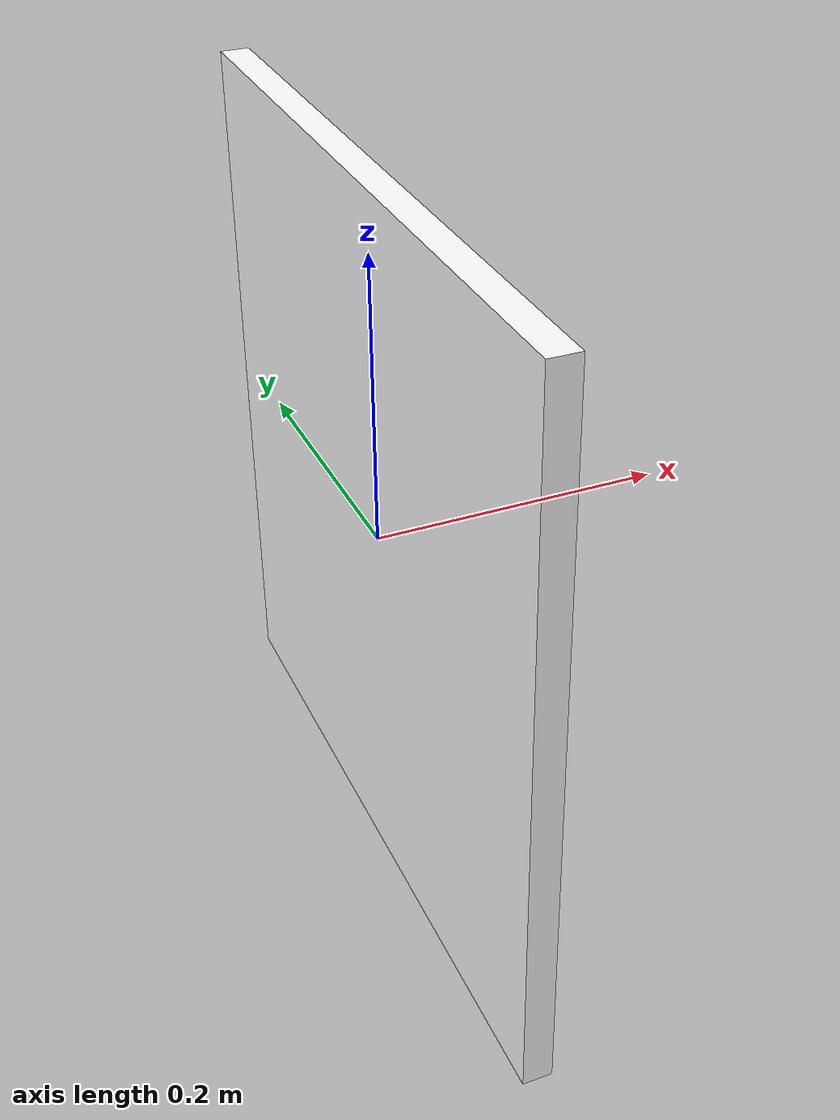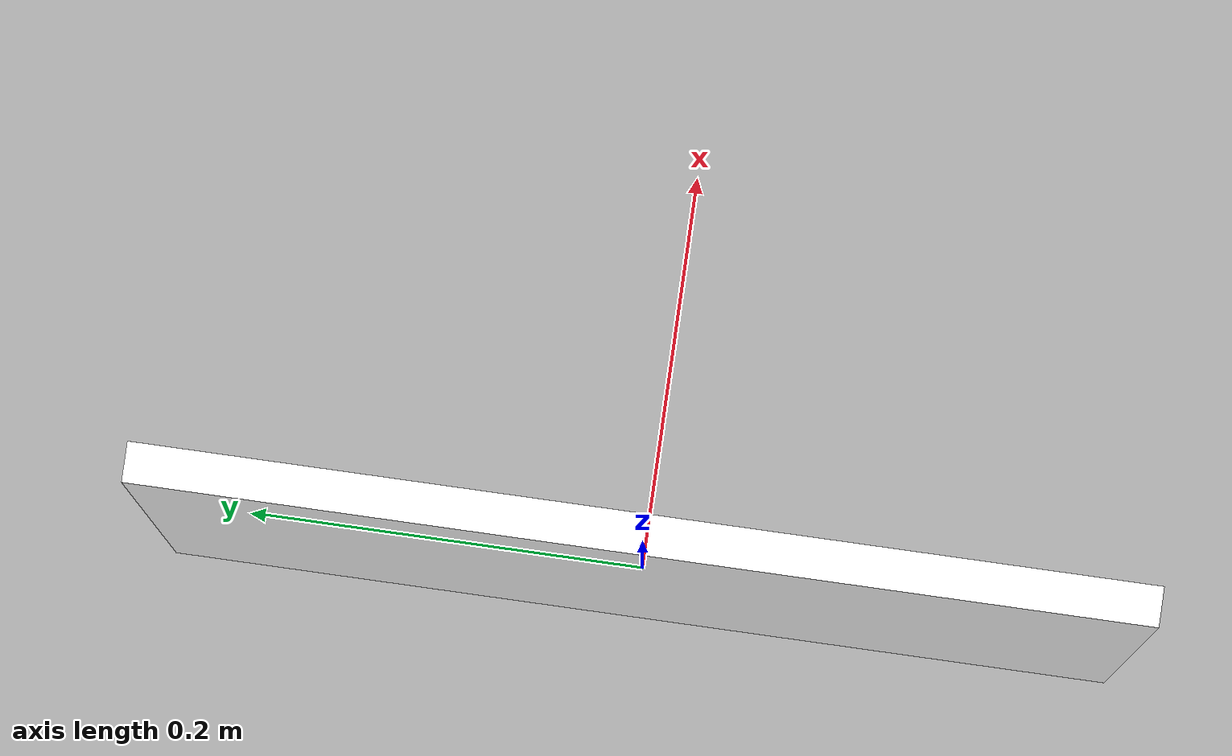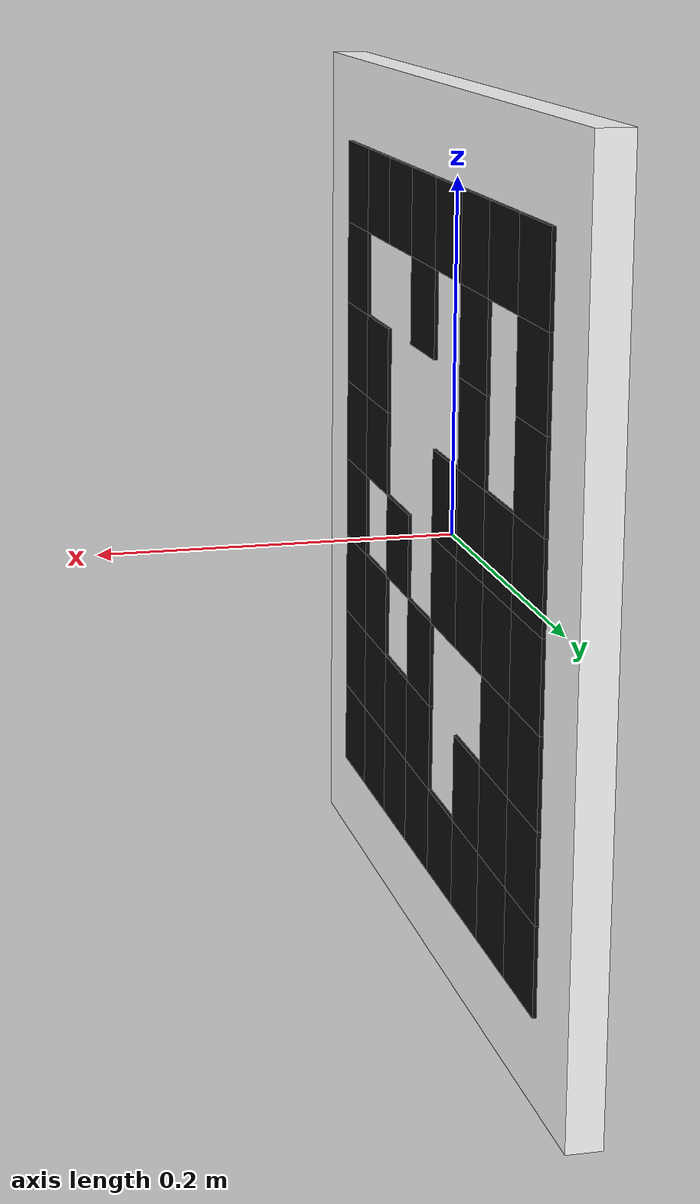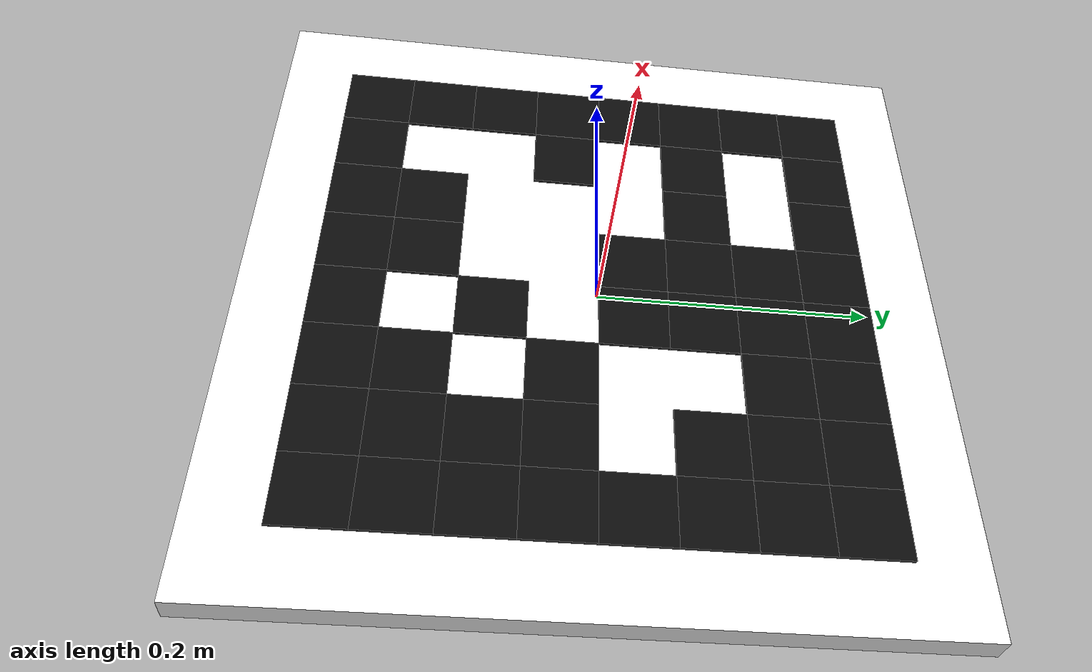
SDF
<?xml version="1.0"?>
<sdf version="1.9">
  <model name="tag36h11_0">
    <static>true</static>
    <link name="tag">
      <collision name="board">
        <pose>0.000000000 0.000000000 0.000000000 0 0 0</pose>
        <geometry><box><size>0.020000000 0.500000000 0.500000000</size></box></geometry>
        <material><ambient>1.000 1.000 1.000 1.000</ambient><diffuse>1.000 1.000 1.000 1.000</diffuse></material>
      </collision>
      <visual name="backing">
        <pose>0.000000000 0.000000000 0.000000000 0 0 0</pose>
        <geometry><box><size>0.020000000 0.500000000 0.500000000</size></box></geometry>
        <material><ambient>1.000 1.000 1.000 1.000</ambient><diffuse>1.000 1.000 1.000 1.000</diffuse></material>
      </visual>
      <visual name="ink_0">
        <pose>0.011000000 -0.175000000 0.175000000 0 0 0</pose>
        <geometry><box><size>0.002000000 0.050000000 0.050000000</size></box></geometry>
        <material><ambient>0.050 0.050 0.050 1.000</ambient><diffuse>0.050 0.050 0.050 1.000</diffuse></material>
      </visual>
      <visual name="ink_1">
        <pose>0.011000000 -0.125000000 0.175000000 0 0 0</pose>
        <geometry><box><size>0.002000000 0.050000000 0.050000000</size></box></geometry>
        <material><ambient>0.050 0.050 0.050 1.000</ambient><diffuse>0.050 0.050 0.050 1.000</diffuse></material>
      </visual>
      <visual name="ink_2">
        <pose>0.011000000 -0.075000000 0.175000000 0 0 0</pose>
        <geometry><box><size>0.002000000 0.050000000 0.050000000</size></box></geometry>
        <material><ambient>0.050 0.050 0.050 1.000</ambient><diffuse>0.050 0.050 0.050 1.000</diffuse></material>
      </visual>
      <visual name="ink_3">
        <pose>0.011000000 -0.025000000 0.175000000 0 0 0</pose>
        <geometry><box><size>0.002000000 0.050000000 0.050000000</size></box></geometry>
        <material><ambient>0.050 0.050 0.050 1.000</ambient><diffuse>0.050 0.050 0.050 1.000</diffuse></material>
      </visual>
      <visual name="ink_4">
        <pose>0.011000000 0.025000000 0.175000000 0 0 0</pose>
        <geometry><box><size>0.002000000 0.050000000 0.050000000</size></box></geometry>
        <material><ambient>0.050 0.050 0.050 1.000</ambient><diffuse>0.050 0.050 0.050 1.000</diffuse></material>
      </visual>
      <visual name="ink_5">
        <pose>0.011000000 0.075000000 0.175000000 0 0 0</pose>
        <geometry><box><size>0.002000000 0.050000000 0.050000000</size></box></geometry>
        <material><ambient>0.050 0.050 0.050 1.000</ambient><diffuse>0.050 0.050 0.050 1.000</diffuse></material>
      </visual>
      <visual name="ink_6">
        <pose>0.011000000 0.125000000 0.175000000 0 0 0</pose>
        <geometry><box><size>0.002000000 0.050000000 0.050000000</size></box></geometry>
        <material><ambient>0.050 0.050 0.050 1.000</ambient><diffuse>0.050 0.050 0.050 1.000</diffuse></material>
      </visual>
      <visual name="ink_7">
        <pose>0.011000000 0.175000000 0.175000000 0 0 0</pose>
        <geometry><box><size>0.002000000 0.050000000 0.050000000</size></box></geometry>
        <material><ambient>0.050 0.050 0.050 1.000</ambient><diffuse>0.050 0.050 0.050 1.000</diffuse></material>
      </visual>
      <visual name="ink_8">
        <pose>0.011000000 -0.175000000 0.125000000 0 0 0</pose>
        <geometry><box><size>0.002000000 0.050000000 0.050000000</size></box></geometry>
        <material><ambient>0.050 0.050 0.050 1.000</ambient><diffuse>0.050 0.050 0.050 1.000</diffuse></material>
      </visual>
      <visual name="ink_9">
        <pose>0.011000000 -0.025000000 0.125000000 0 0 0</pose>
        <geometry><box><size>0.002000000 0.050000000 0.050000000</size></box></geometry>
        <material><ambient>0.050 0.050 0.050 1.000</ambient><diffuse>0.050 0.050 0.050 1.000</diffuse></material>
      </visual>
      <visual name="ink_10">
        <pose>0.011000000 0.075000000 0.125000000 0 0 0</pose>
        <geometry><box><size>0.002000000 0.050000000 0.050000000</size></box></geometry>
        <material><ambient>0.050 0.050 0.050 1.000</ambient><diffuse>0.050 0.050 0.050 1.000</diffuse></material>
      </visual>
      <visual name="ink_11">
        <pose>0.011000000 0.175000000 0.125000000 0 0 0</pose>
        <geometry><box><size>0.002000000 0.050000000 0.050000000</size></box></geometry>
        <material><ambient>0.050 0.050 0.050 1.000</ambient><diffuse>0.050 0.050 0.050 1.000</diffuse></material>
      </visual>
      <visual name="ink_12">
        <pose>0.011000000 -0.175000000 0.075000000 0 0 0</pose>
        <geometry><box><size>0.002000000 0.050000000 0.050000000</size></box></geometry>
        <material><ambient>0.050 0.050 0.050 1.000</ambient><diffuse>0.050 0.050 0.050 1.000</diffuse></material>
      </visual>
      <visual name="ink_13">
        <pose>0.011000000 -0.125000000 0.075000000 0 0 0</pose>
        <geometry><box><size>0.002000000 0.050000000 0.050000000</size></box></geometry>
        <material><ambient>0.050 0.050 0.050 1.000</ambient><diffuse>0.050 0.050 0.050 1.000</diffuse></material>
      </visual>
      <visual name="ink_14">
        <pose>0.011000000 0.075000000 0.075000000 0 0 0</pose>
        <geometry><box><size>0.002000000 0.050000000 0.050000000</size></box></geometry>
        <material><ambient>0.050 0.050 0.050 1.000</ambient><diffuse>0.050 0.050 0.050 1.000</diffuse></material>
      </visual>
      <visual name="ink_15">
        <pose>0.011000000 0.175000000 0.075000000 0 0 0</pose>
        <geometry><box><size>0.002000000 0.050000000 0.050000000</size></box></geometry>
        <material><ambient>0.050 0.050 0.050 1.000</ambient><diffuse>0.050 0.050 0.050 1.000</diffuse></material>
      </visual>
      <visual name="ink_16">
        <pose>0.011000000 -0.175000000 0.025000000 0 0 0</pose>
        <geometry><box><size>0.002000000 0.050000000 0.050000000</size></box></geometry>
        <material><ambient>0.050 0.050 0.050 1.000</ambient><diffuse>0.050 0.050 0.050 1.000</diffuse></material>
      </visual>
      <visual name="ink_17">
        <pose>0.011000000 -0.125000000 0.025000000 0 0 0</pose>
        <geometry><box><size>0.002000000 0.050000000 0.050000000</size></box></geometry>
        <material><ambient>0.050 0.050 0.050 1.000</ambient><diffuse>0.050 0.050 0.050 1.000</diffuse></material>
      </visual>
      <visual name="ink_18">
        <pose>0.011000000 0.025000000 0.025000000 0 0 0</pose>
        <geometry><box><size>0.002000000 0.050000000 0.050000000</size></box></geometry>
        <material><ambient>0.050 0.050 0.050 1.000</ambient><diffuse>0.050 0.050 0.050 1.000</diffuse></material>
      </visual>
      <visual name="ink_19">
        <pose>0.011000000 0.075000000 0.025000000 0 0 0</pose>
        <geometry><box><size>0.002000000 0.050000000 0.050000000</size></box></geometry>
        <material><ambient>0.050 0.050 0.050 1.000</ambient><diffuse>0.050 0.050 0.050 1.000</diffuse></material>
      </visual>
      <visual name="ink_20">
        <pose>0.011000000 0.125000000 0.025000000 0 0 0</pose>
        <geometry><box><size>0.002000000 0.050000000 0.050000000</size></box></geometry>
        <material><ambient>0.050 0.050 0.050 1.000</ambient><diffuse>0.050 0.050 0.050 1.000</diffuse></material>
      </visual>
      <visual name="ink_21">
        <pose>0.011000000 0.175000000 0.025000000 0 0 0</pose>
        <geometry><box><size>0.002000000 0.050000000 0.050000000</size></box></geometry>
        <material><ambient>0.050 0.050 0.050 1.000</ambient><diffuse>0.050 0.050 0.050 1.000</diffuse></material>
      </visual>
      <visual name="ink_22">
        <pose>0.011000000 -0.175000000 -0.025000000 0 0 0</pose>
        <geometry><box><size>0.002000000 0.050000000 0.050000000</size></box></geometry>
        <material><ambient>0.050 0.050 0.050 1.000</ambient><diffuse>0.050 0.050 0.050 1.000</diffuse></material>
      </visual>
      <visual name="ink_23">
        <pose>0.011000000 -0.075000000 -0.025000000 0 0 0</pose>
        <geometry><box><size>0.002000000 0.050000000 0.050000000</size></box></geometry>
        <material><ambient>0.050 0.050 0.050 1.000</ambient><diffuse>0.050 0.050 0.050 1.000</diffuse></material>
      </visual>
      <visual name="ink_24">
        <pose>0.011000000 0.025000000 -0.025000000 0 0 0</pose>
        <geometry><box><size>0.002000000 0.050000000 0.050000000</size></box></geometry>
        <material><ambient>0.050 0.050 0.050 1.000</ambient><diffuse>0.050 0.050 0.050 1.000</diffuse></material>
      </visual>
      <visual name="ink_25">
        <pose>0.011000000 0.075000000 -0.025000000 0 0 0</pose>
        <geometry><box><size>0.002000000 0.050000000 0.050000000</size></box></geometry>
        <material><ambient>0.050 0.050 0.050 1.000</ambient><diffuse>0.050 0.050 0.050 1.000</diffuse></material>
      </visual>
      <visual name="ink_26">
        <pose>0.011000000 0.125000000 -0.025000000 0 0 0</pose>
        <geometry><box><size>0.002000000 0.050000000 0.050000000</size></box></geometry>
        <material><ambient>0.050 0.050 0.050 1.000</ambient><diffuse>0.050 0.050 0.050 1.000</diffuse></material>
      </visual>
      <visual name="ink_27">
        <pose>0.011000000 0.175000000 -0.025000000 0 0 0</pose>
        <geometry><box><size>0.002000000 0.050000000 0.050000000</size></box></geometry>
        <material><ambient>0.050 0.050 0.050 1.000</ambient><diffuse>0.050 0.050 0.050 1.000</diffuse></material>
      </visual>
      <visual name="ink_28">
        <pose>0.011000000 -0.175000000 -0.075000000 0 0 0</pose>
        <geometry><box><size>0.002000000 0.050000000 0.050000000</size></box></geometry>
        <material><ambient>0.050 0.050 0.050 1.000</ambient><diffuse>0.050 0.050 0.050 1.000</diffuse></material>
      </visual>
      <visual name="ink_29">
        <pose>0.011000000 -0.125000000 -0.075000000 0 0 0</pose>
        <geometry><box><size>0.002000000 0.050000000 0.050000000</size></box></geometry>
        <material><ambient>0.050 0.050 0.050 1.000</ambient><diffuse>0.050 0.050 0.050 1.000</diffuse></material>
      </visual>
      <visual name="ink_30">
        <pose>0.011000000 -0.025000000 -0.075000000 0 0 0</pose>
        <geometry><box><size>0.002000000 0.050000000 0.050000000</size></box></geometry>
        <material><ambient>0.050 0.050 0.050 1.000</ambient><diffuse>0.050 0.050 0.050 1.000</diffuse></material>
      </visual>
      <visual name="ink_31">
        <pose>0.011000000 0.125000000 -0.075000000 0 0 0</pose>
        <geometry><box><size>0.002000000 0.050000000 0.050000000</size></box></geometry>
        <material><ambient>0.050 0.050 0.050 1.000</ambient><diffuse>0.050 0.050 0.050 1.000</diffuse></material>
      </visual>
      <visual name="ink_32">
        <pose>0.011000000 0.175000000 -0.075000000 0 0 0</pose>
        <geometry><box><size>0.002000000 0.050000000 0.050000000</size></box></geometry>
        <material><ambient>0.050 0.050 0.050 1.000</ambient><diffuse>0.050 0.050 0.050 1.000</diffuse></material>
      </visual>
      <visual name="ink_33">
        <pose>0.011000000 -0.175000000 -0.125000000 0 0 0</pose>
        <geometry><box><size>0.002000000 0.050000000 0.050000000</size></box></geometry>
        <material><ambient>0.050 0.050 0.050 1.000</ambient><diffuse>0.050 0.050 0.050 1.000</diffuse></material>
      </visual>
      <visual name="ink_34">
        <pose>0.011000000 -0.125000000 -0.125000000 0 0 0</pose>
        <geometry><box><size>0.002000000 0.050000000 0.050000000</size></box></geometry>
        <material><ambient>0.050 0.050 0.050 1.000</ambient><diffuse>0.050 0.050 0.050 1.000</diffuse></material>
      </visual>
      <visual name="ink_35">
        <pose>0.011000000 -0.075000000 -0.125000000 0 0 0</pose>
        <geometry><box><size>0.002000000 0.050000000 0.050000000</size></box></geometry>
        <material><ambient>0.050 0.050 0.050 1.000</ambient><diffuse>0.050 0.050 0.050 1.000</diffuse></material>
      </visual>
      <visual name="ink_36">
        <pose>0.011000000 -0.025000000 -0.125000000 0 0 0</pose>
        <geometry><box><size>0.002000000 0.050000000 0.050000000</size></box></geometry>
        <material><ambient>0.050 0.050 0.050 1.000</ambient><diffuse>0.050 0.050 0.050 1.000</diffuse></material>
      </visual>
      <visual name="ink_37">
        <pose>0.011000000 0.075000000 -0.125000000 0 0 0</pose>
        <geometry><box><size>0.002000000 0.050000000 0.050000000</size></box></geometry>
        <material><ambient>0.050 0.050 0.050 1.000</ambient><diffuse>0.050 0.050 0.050 1.000</diffuse></material>
      </visual>
      <visual name="ink_38">
        <pose>0.011000000 0.125000000 -0.125000000 0 0 0</pose>
        <geometry><box><size>0.002000000 0.050000000 0.050000000</size></box></geometry>
        <material><ambient>0.050 0.050 0.050 1.000</ambient><diffuse>0.050 0.050 0.050 1.000</diffuse></material>
      </visual>
      <visual name="ink_39">
        <pose>0.011000000 0.175000000 -0.125000000 0 0 0</pose>
        <geometry><box><size>0.002000000 0.050000000 0.050000000</size></box></geometry>
        <material><ambient>0.050 0.050 0.050 1.000</ambient><diffuse>0.050 0.050 0.050 1.000</diffuse></material>
      </visual>
      <visual name="ink_40">
        <pose>0.011000000 -0.175000000 -0.175000000 0 0 0</pose>
        <geometry><box><size>0.002000000 0.050000000 0.050000000</size></box></geometry>
        <material><ambient>0.050 0.050 0.050 1.000</ambient><diffuse>0.050 0.050 0.050 1.000</diffuse></material>
      </visual>
      <visual name="ink_41">
        <pose>0.011000000 -0.125000000 -0.175000000 0 0 0</pose>
        <geometry><box><size>0.002000000 0.050000000 0.050000000</size></box></geometry>
        <material><ambient>0.050 0.050 0.050 1.000</ambient><diffuse>0.050 0.050 0.050 1.000</diffuse></material>
      </visual>
      <visual name="ink_42">
        <pose>0.011000000 -0.075000000 -0.175000000 0 0 0</pose>
        <geometry><box><size>0.002000000 0.050000000 0.050000000</size></box></geometry>
        <material><ambient>0.050 0.050 0.050 1.000</ambient><diffuse>0.050 0.050 0.050 1.000</diffuse></material>
      </visual>
      <visual name="ink_43">
        <pose>0.011000000 -0.025000000 -0.175000000 0 0 0</pose>
        <geometry><box><size>0.002000000 0.050000000 0.050000000</size></box></geometry>
        <material><ambient>0.050 0.050 0.050 1.000</ambient><diffuse>0.050 0.050 0.050 1.000</diffuse></material>
      </visual>
      <visual name="ink_44">
        <pose>0.011000000 0.025000000 -0.175000000 0 0 0</pose>
        <geometry><box><size>0.002000000 0.050000000 0.050000000</size></box></geometry>
        <material><ambient>0.050 0.050 0.050 1.000</ambient><diffuse>0.050 0.050 0.050 1.000</diffuse></material>
      </visual>
      <visual name="ink_45">
        <pose>0.011000000 0.075000000 -0.175000000 0 0 0</pose>
        <geometry><box><size>0.002000000 0.050000000 0.050000000</size></box></geometry>
        <material><ambient>0.050 0.050 0.050 1.000</ambient><diffuse>0.050 0.050 0.050 1.000</diffuse></material>
      </visual>
      <visual name="ink_46">
        <pose>0.011000000 0.125000000 -0.175000000 0 0 0</pose>
        <geometry><box><size>0.002000000 0.050000000 0.050000000</size></box></geometry>
        <material><ambient>0.050 0.050 0.050 1.000</ambient><diffuse>0.050 0.050 0.050 1.000</diffuse></material>
      </visual>
      <visual name="ink_47">
        <pose>0.011000000 0.175000000 -0.175000000 0 0 0</pose>
        <geometry><box><size>0.002000000 0.050000000 0.050000000</size></box></geometry>
        <material><ambient>0.050 0.050 0.050 1.000</ambient><diffuse>0.050 0.050 0.050 1.000</diffuse></material>
      </visual>
    </link>
  </model>
</sdf>
